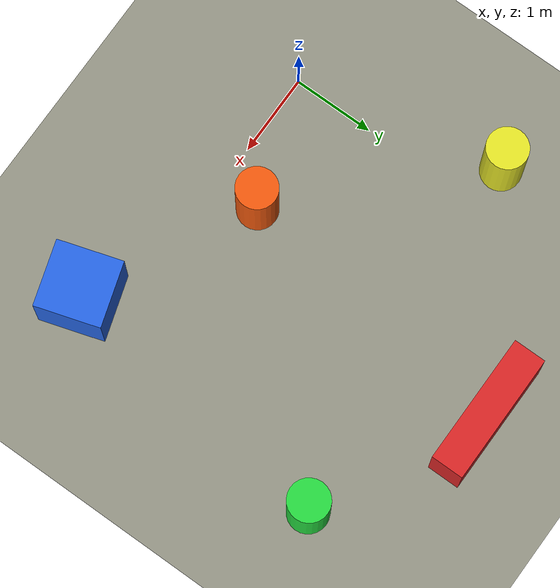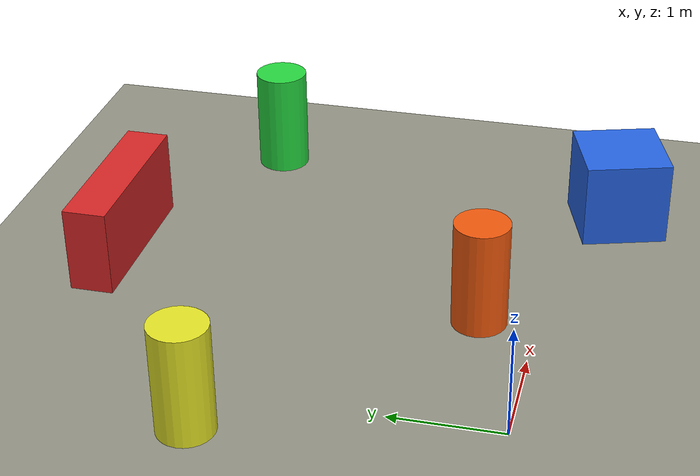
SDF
<?xml version="1.0" ?>
<sdf version="1.8">
  <world name="naviguard_slam_world">

    <!-- Physics configuration -->
    <physics name="1ms" type="ignored">
      <max_step_size>0.001</max_step_size>
      <real_time_factor>1.0</real_time_factor>
    </physics>

    <!-- World plugins for Gazebo Harmonic -->
    <plugin filename="gz-sim-physics-system" name="gz::sim::systems::Physics" />
    <plugin filename="gz-sim-user-commands-system" name="gz::sim::systems::UserCommands" />
    <plugin filename="gz-sim-scene-broadcaster-system" name="gz::sim::systems::SceneBroadcaster" />
    <plugin filename="gz-sim-sensors-system" name="gz::sim::systems::Sensors">
      <render_engine>ogre2</render_engine>
    </plugin>
    <plugin filename="gz-sim-imu-system" name="gz::sim::systems::Imu" />

    <!-- Scene lighting and sky -->
    <scene>
      <ambient>0.65 0.65 0.65 1.0</ambient>
      <background>0.7 0.8 0.9 1.0</background>
      <shadows>true</shadows>
      <grid>true</grid>
    </scene>

    <!-- Sun Light -->
    <light type="directional" name="sun">
      <cast_shadows>true</cast_shadows>
      <pose>0 0 25 0 0 0</pose>
      <diffuse>0.9 0.9 0.85 1</diffuse>
      <specular>0.3 0.3 0.3 1</specular>
      <direction>-0.5 0.2 -0.87</direction>
    </light>

    <!-- Ground Plane -->
    <model name="ground_plane">
      <static>true</static>
      <link name="link">
        <collision name="collision">
          <geometry>
            <plane>
              <normal>0 0 1</normal>
              <size>100 100</size>
            </plane>
          </geometry>
          <surface>
            <friction>
              <ode>
                <mu>1.0</mu>
                <mu2>1.0</mu2>
              </ode>
            </friction>
          </surface>
        </collision>
        <visual name="visual">
          <geometry>
            <plane>
              <normal>0 0 1</normal>
              <size>100 100</size>
            </plane>
          </geometry>
          <material>
            <ambient>0.48 0.48 0.45 1.0</ambient>
            <diffuse>0.58 0.58 0.52 1.0</diffuse>
          </material>
        </visual>
      </link>
    </model>

    <!-- Visual Structure 1: Start/Loop Anchor (Orange Post at 1.5, 0.5) -->
    <model name="anchor_post">
      <static>true</static>
      <pose>1.5 0.5 0.5 0 0 0</pose>
      <link name="link">
        <collision name="c">
          <geometry><cylinder><radius>0.25</radius><length>1.0</length></cylinder></geometry>
        </collision>
        <visual name="v">
          <geometry><cylinder><radius>0.25</radius><length>1.0</length></cylinder></geometry>
          <material>
            <ambient>0.9 0.3 0.0 1.0</ambient>
            <diffuse>0.95 0.35 0.05 1.0</diffuse>
          </material>
        </visual>
      </link>
    </model>

    <!-- Visual Structure 2: East Corner Crate (Blue Crate at 3.5, -0.5) -->
    <model name="east_crate">
      <static>true</static>
      <pose>3.5 -0.5 0.4 0 0 0.3</pose>
      <link name="link">
        <collision name="c">
          <geometry><box><size>0.8 0.8 0.8</size></box></geometry>
        </collision>
        <visual name="v">
          <geometry><box><size>0.8 0.8 0.8</size></box></geometry>
          <material>
            <ambient>0.1 0.3 0.8 1.0</ambient>
            <diffuse>0.15 0.4 0.9 1.0</diffuse>
          </material>
        </visual>
      </link>
    </model>

    <!-- Visual Structure 3: North-East Post (Green Post at 4.0, 3.0) -->
    <model name="ne_post">
      <static>true</static>
      <pose>4.0 3.0 0.5 0 0 0</pose>
      <link name="link">
        <collision name="c">
          <geometry><cylinder><radius>0.25</radius><length>1.0</length></cylinder></geometry>
        </collision>
        <visual name="v">
          <geometry><cylinder><radius>0.25</radius><length>1.0</length></cylinder></geometry>
          <material>
            <ambient>0.1 0.8 0.2 1.0</ambient>
            <diffuse>0.15 0.85 0.25 1.0</diffuse>
          </material>
        </visual>
      </link>
    </model>

    <!-- Visual Structure 4: North Wall/Obstacle (Textured Red Wall at 2.0, 4.0) -->
    <model name="north_wall">
      <static>true</static>
      <pose>2.0 4.0 0.4 0 0 0</pose>
      <link name="link">
        <collision name="c">
          <geometry><box><size>1.6 0.4 0.8</size></box></geometry>
        </collision>
        <visual name="v">
          <geometry><box><size>1.6 0.4 0.8</size></box></geometry>
          <material>
            <ambient>0.8 0.1 0.1 1.0</ambient>
            <diffuse>0.85 0.15 0.15 1.0</diffuse>
          </material>
        </visual>
      </link>
    </model>

    <!-- Visual Structure 5: West Return Marker (Yellow Pillar at -0.5, 2.5) -->
    <model name="west_pillar">
      <static>true</static>
      <pose>-0.5 2.5 0.5 0 0 0</pose>
      <link name="link">
        <collision name="c">
          <geometry><cylinder><radius>0.25</radius><length>1.0</length></cylinder></geometry>
        </collision>
        <visual name="v">
          <geometry><cylinder><radius>0.25</radius><length>1.0</length></cylinder></geometry>
          <material>
            <ambient>0.85 0.85 0.1 1.0</ambient>
            <diffuse>0.9 0.9 0.15 1.0</diffuse>
          </material>
        </visual>
      </link>
    </model>

  </world>
</sdf>
